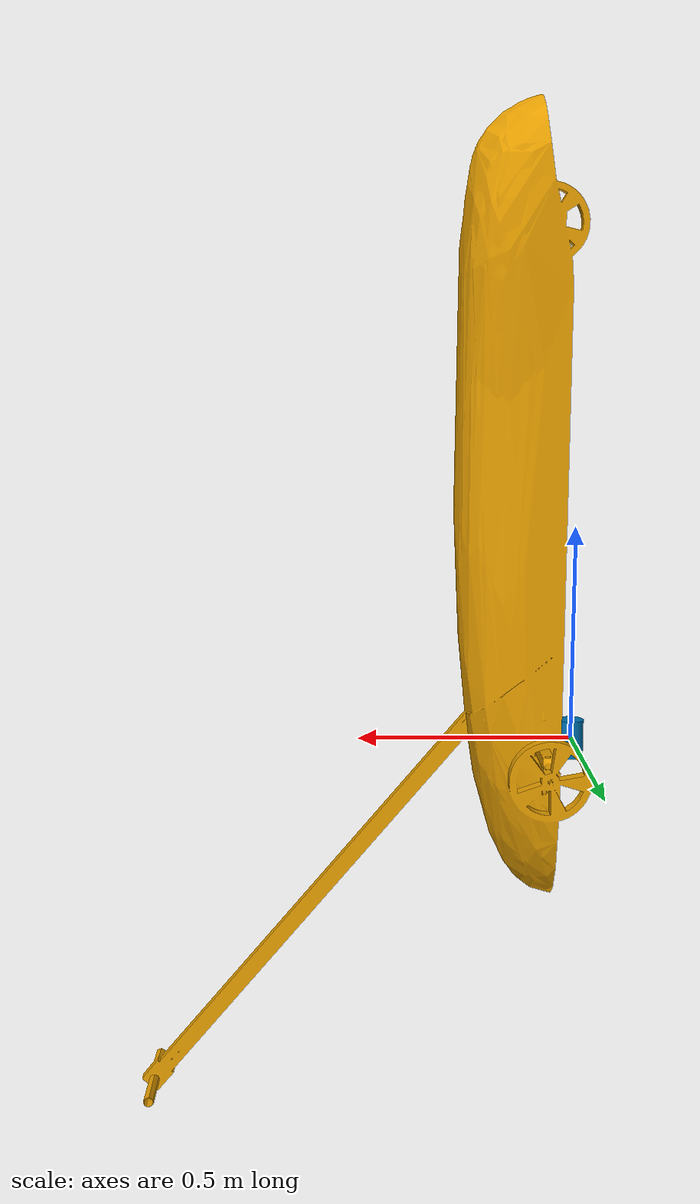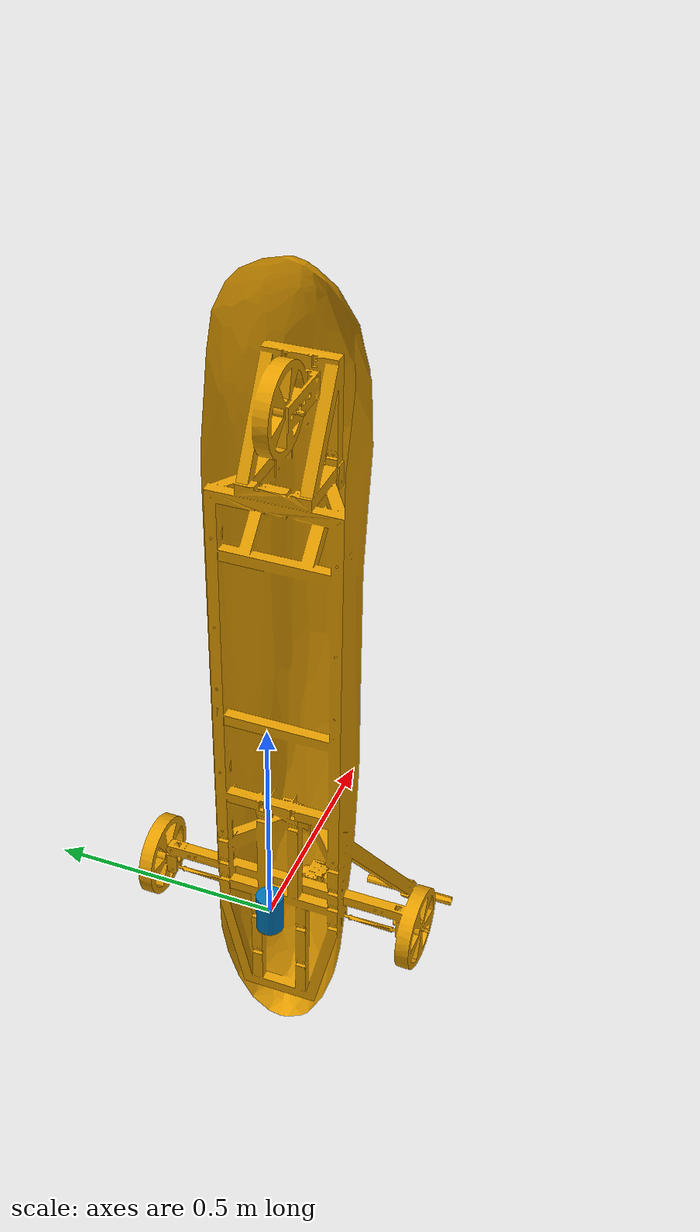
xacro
<?xml version="1.0"?>
<robot name="buggy" xmlns:xacro="http://ros.org/wiki/xacro">

<xacro:macro name="buggy_whole" params="num">
  <link name="chassis">
    <inertial>
      <mass value="34.0" />
      <inertia ixx="18.58" ixy="0.0" ixz="0.0" iyy="3.093" iyz="0.0" izz="15.543" />
        <!-- for a box: ixx = 0.083 * mass * (y*y + z*z) -->
        <!-- for a box: ixy = 0 -->
        <!-- for a box: ixz = 0 -->
        <!-- for a box: iyy = 0.083 * mass * (x*x + z*z) -->
        <!-- for a box: iyz = 0 -->
        <!-- for a box: izz = 0.083 * mass * (x*x + y*y) -->
    </inertial>
    <collision name="collision">
      <pose xyz="0.16 0.0 0.54" rpy="0.0 0.0 0.0" />
      <geometry>
        <box size="0.24 0.29 1.84" />
      </geometry>
    </collision>
    <visual name="frame_visual">
      <geometry>
        <mesh filename="model://buggy/buggy.dae" submesh="frame" />
      </geometry>
    </visual>
    <visual name="shell_visual">
      <geometry>
        <mesh filename="model://buggy/buggy.dae" submesh="shell" />
      </geometry>
    </visual>
  </link>
  <link name="left_wheel">
    <pose xyz="0.0857 -0.301 -0.0159" rpy="0.0 0.0 0.0" />
    <collision name="collision">
      <pose xyz="0.0 0.0 0.0" rpy="-1.57079633 0.0 0.0" />
      <geometry>
        <cylinder length="0.03" radius="0.09" />
      </geometry>
    </collision>
    <visual name="visual">
      <geometry>
        <mesh filename="model://buggy/buggy.dae" submesh="leftwheel" center="true" />
      </geometry>
    </visual>
  </link>
  <link name="right_wheel">
    <pose xyz="0.0857 0.301 -0.0159" rpy="0.0 0.0 0.0" />
    <collision name="collision">
      <pose xyz="0.0 0.0 0.0" rpy="-1.57079633 0.0 0.0" />
      <geometry>
        <cylinder length="0.03" radius="0.09" />
      </geometry>
    </collision>
    <visual name="visual">
      <geometry>
        <mesh filename="model://buggy/buggy.dae" submesh="rightwheel" center="true" />
      </geometry>
    </visual>
  </link>
  <link name="front_wheel">
    <pose xyz="0.0789 0 1.18" rpy="0.01 0.0 0.0" />
    <collision name="collision">
      <pose xyz="0.0 0.0 0.0" rpy="-1.57079633 0.0 0.0" />
      <geometry>
        <cylinder length="0.03" radius="0.09" />
      </geometry>
    </collision>
    <visual name="visual">
      <geometry>
        <mesh filename="model://buggy/buggy.dae" submesh="frontwheel" center="true"/>
      </geometry>
    </visual>
  </link>
  <link name="front_wheel_steer_pin">
    <pose xyz="0.0789 0 1.18" rpy="0.01 0.0 0.0" />
    <collision name="collision">
      <pose xyz="0.0 0.0 0.0" rpy="0.0 0.0 0.0" />
      <geometry>
        <cylinder length="0.09" radius="0.03" />
      </geometry>
    </collision>
    <visual name="visual">
      <geometry>
        <cylinder length="0.09" radius="0.03" />
      </geometry>
    </visual>
  </link>
  <joint type="continuous" name="left_wheel_hinge">
    <pose xyz="0 0 0" rpy="0 0 0" />
    <child link="left_wheel" />
    <parent link="chassis" />
    <axis xyz="0 1 0" />
  </joint>
  <joint type="continuous" name="right_wheel_hinge">
    <pose xyz="0 0 0" rpy="0 0 0" />
    <child link="right_wheel" />
    <parent link="chassis" />
    <axis xyz="0 1 0" />
  </joint>
  <joint type="continuous" name="front_wheel_hinge">
    <pose xyz="0 0 0" rpy="0 0 0" />
    <child link="front_wheel_steer_pin" />
    <parent link="chassis" />
    <axis xyz="0 1 0" />
  </joint>
  <joint type="revolute" name="front_wheel_steer">
    <pose xyz="0 0 0" rpy="0 0 0" />
    <child link="front_wheel" />
    <parent link="front_wheel_steer_pin" />
    <axis xyz="0 0 1" />
    <limit effort="5.0" lower="-1.57" upper="1.57" velocity="2.208932"/>
  </joint>

  <transmission name="front_wheel_steer_trans">
    <type>transmission_interface/SimpleTranmission</type>
    <actuator name="front_wheel_steer_actuator">
      <mechanicalReduction>1</mechanicalReduction>
    </actuator>
    <joint name="front_wheel_steer">
      <hardwareInterface>PositionJointInterface</hardwareInterface>
    </joint>
  </transmission>
  <transmission name="front_wheel_hinge_trans">
    <type>transmission_interface/SimpleTranmission</type>
    <actuator name="front_wheel_hinge_actuator">
      <mechanicalReduction>1</mechanicalReduction>
    </actuator>
    <joint name="front_wheel_hinge">
      <hardwareInterface>PositionJointInterface</hardwareInterface>
    </joint>
  </transmission>
  <transmission name="left_wheel_hinge_trans">
    <type>transmission_interface/SimpleTranmission</type>
    <actuator name="left_wheel_hinge_actuator">
      <mechanicalReduction>1</mechanicalReduction>
    </actuator>
    <joint name="left_wheel_hinge">
      <hardwareInterface>PositionJointInterface</hardwareInterface>
    </joint>
  </transmission>
  <transmission name="right_wheel_hinge_trans">
    <type>transmission_interface/SimpleTranmission</type>
    <actuator name="right_wheel_hinge_actuator">
      <mechanicalReduction>1</mechanicalReduction>
    </actuator>
    <joint name="right_wheel_hinge">
      <hardwareInterface>PositionJointInterface</hardwareInterface>
    </joint>
  </transmission>
</xacro:macro>

<xacro:buggy_whole num="0"/>

</robot>
